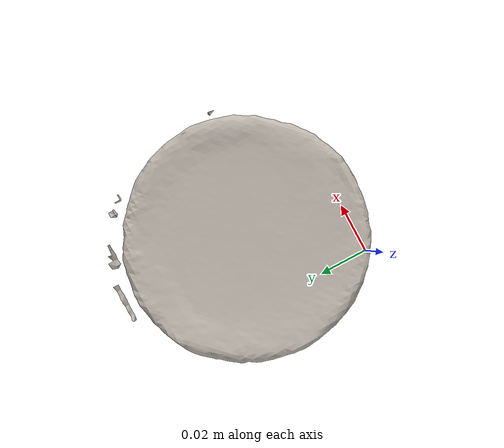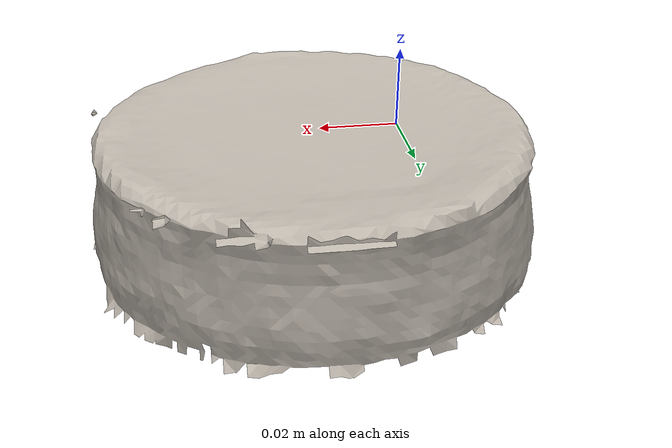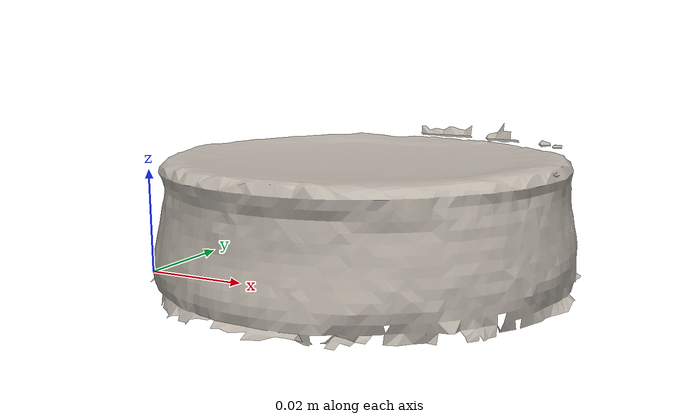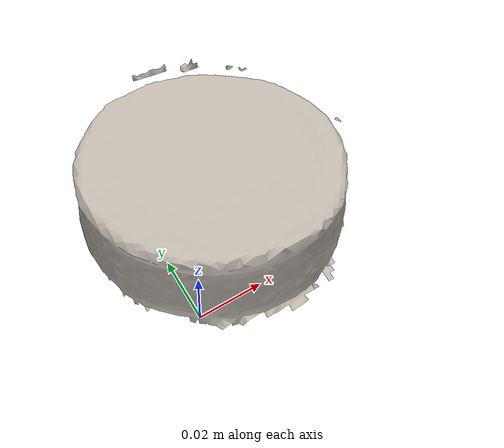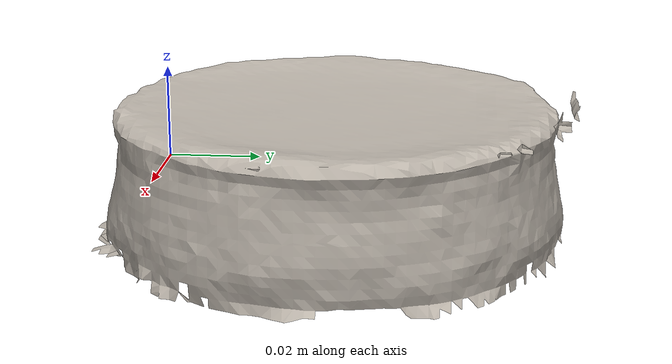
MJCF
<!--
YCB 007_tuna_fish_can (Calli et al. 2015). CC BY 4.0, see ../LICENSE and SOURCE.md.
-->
<mujoco model="ycb_007_tuna_fish_can">
  <compiler angle="radian" meshdir="." texturedir="."/>
  <asset>
    <texture name="tuna_fish_can" type="2d" file="texture_map.png"/>
    <material name="tuna_fish_can" texture="tuna_fish_can"/>
    <mesh name="tuna_fish_can" file="textured.obj"/>
  </asset>
  <worldbody>
    <body name="tuna_fish_can">
      <freejoint name="tuna_fish_can_free"/>
      <geom name="tuna_fish_can_visual" type="mesh" mesh="tuna_fish_can" material="tuna_fish_can" pos="0.0260 0.0221 -0.0136"
            contype="0" conaffinity="0" group="2" mass="0"/>
      <geom name="tuna_fish_can_collision" type="cylinder" size="0.0428 0.0168" mass="0.171"
            group="3" condim="4" friction="0.9 0.005 0.0001"/>
    </body>
  </worldbody>
</mujoco>
